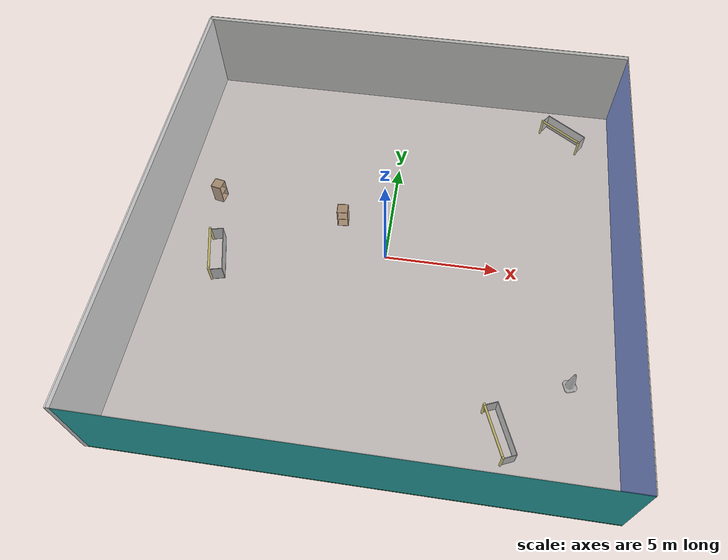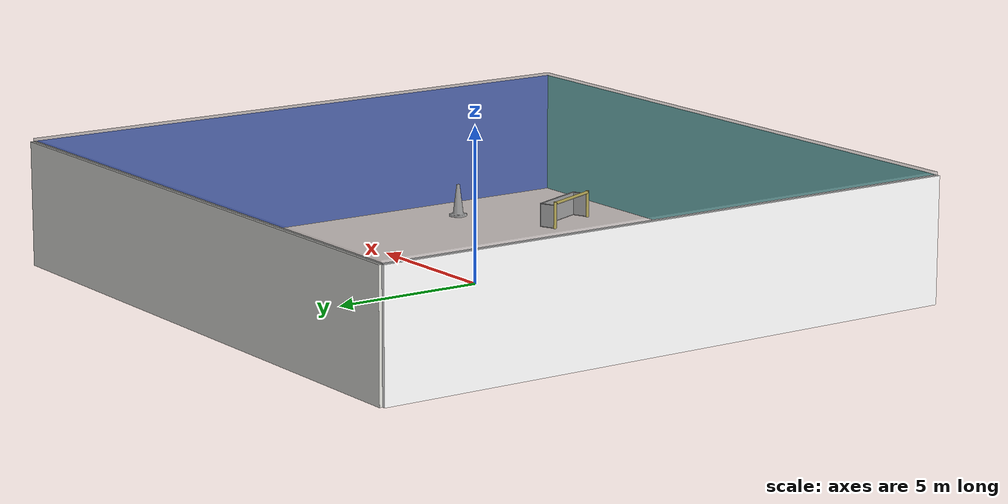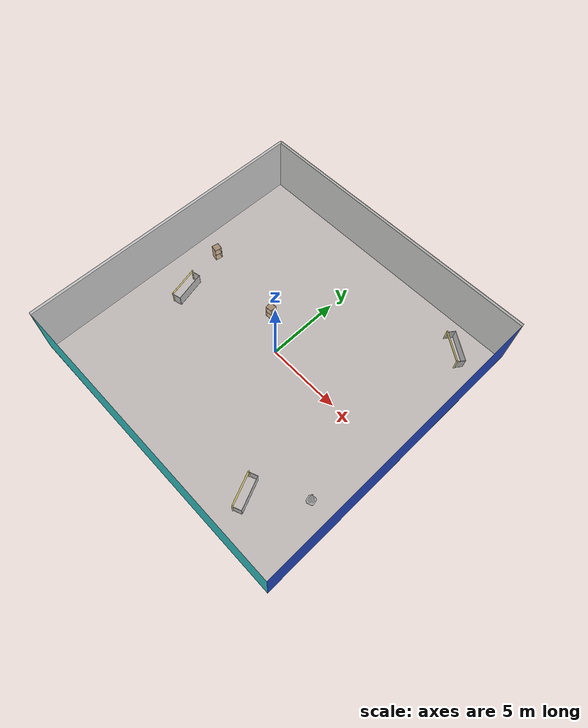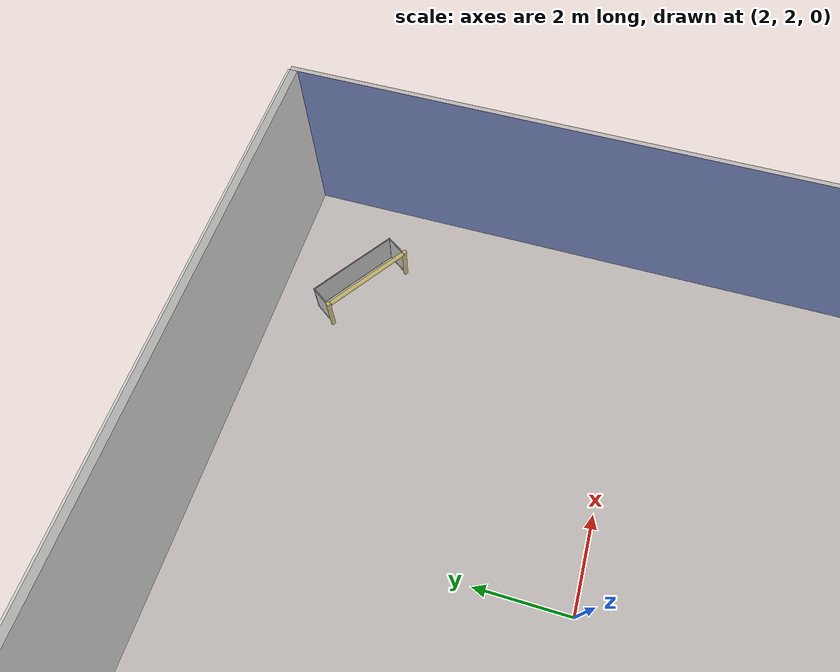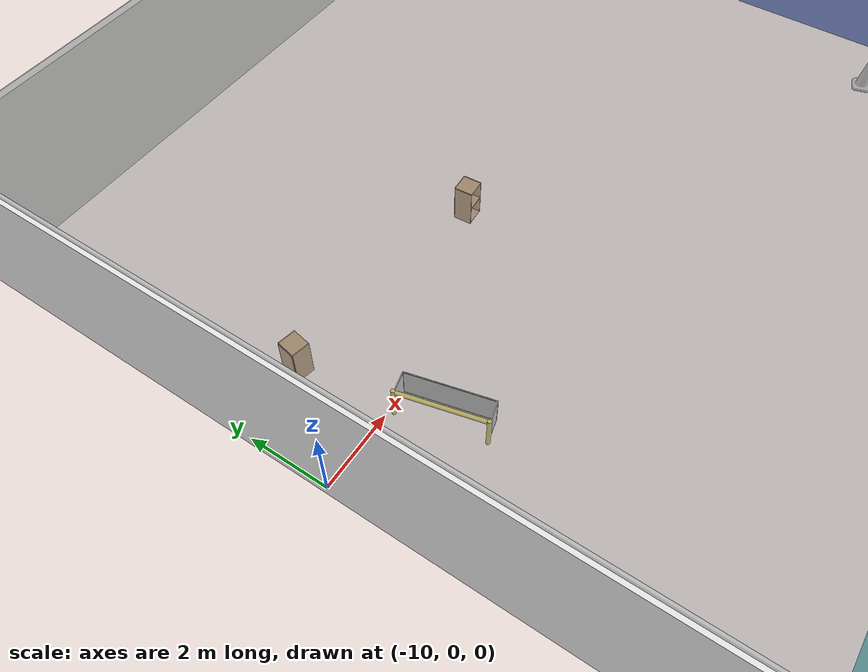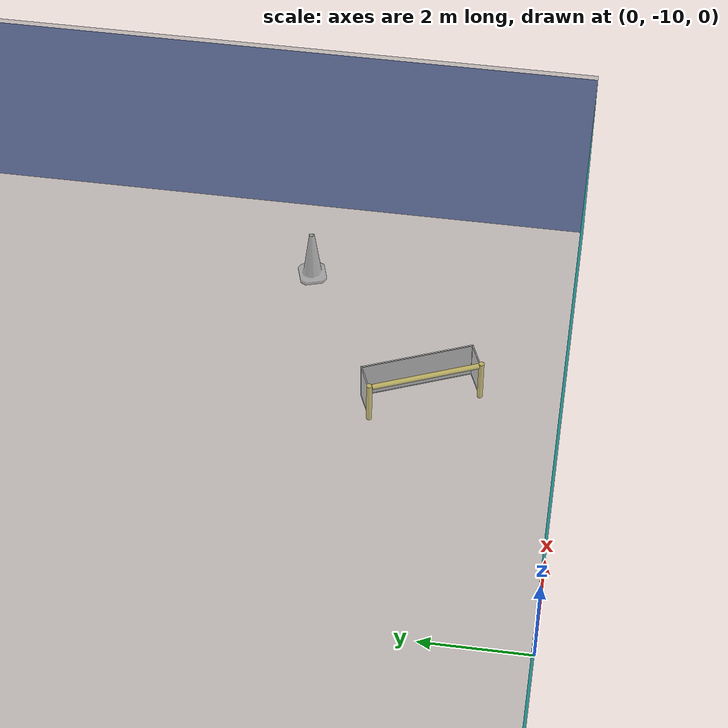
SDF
<sdf version="1.4">
 <world name="default">
  <physics type="ode">
   <max_step_size>0.001</max_step_size>
   <real_time_factor>1</real_time_factor>
   <real_time_update_rate>1000</real_time_update_rate>
   <gravity>0 0 -9.8</gravity>
  </physics>
  <scene><ambient>0.4 0.4 0.4 1</ambient><background>0.7 0.7 0.7 1</background><shadows>1</shadows></scene>
  <model name="Surrounding">
   <static>1</static>
   <link name="Ceiling">
    <collision name="Ceiling_Collision"><geometry><box><size>20 20 0.1</size></box></geometry></collision>
    <visual name="Ceiling_Visual">
     <geometry><box><size>20 20 0.1</size></box></geometry>
     <material>
      <script><uri>file://media/materials/scripts/gazebo.material</uri><name>Gazebo/GreyTransparent</name></script>
     </material>
    </visual>
    <pose>0 0 4.05 0 0 0</pose>
   </link>
   <link name="Wall_South">
    <collision name="Wall_South_Collision">
     <geometry><box><size>20 0 4</size></box></geometry>
     <pose>0 0 2 0 -0 0</pose>
    </collision>
    <visual name="Wall_South_Visual">
     <pose>0 0 2 0 -0 0</pose>
     <geometry><box><size>20 0 4</size></box></geometry>
     <material>
      <script>
       <uri>file://media/materials/scripts/gazebo.material</uri>
       <name>Gazebo/TurquoiseGlowOutline</name>
      </script>
     </material>
    </visual>
    <velocity_decay><linear>0</linear><angular>0</angular></velocity_decay>
    <pose>0 -10 0 0 -0 0</pose>
   </link>
   <link name="Wall_East">
    <collision name="Wall_21_Collision">
     <geometry><box><size>20 0 4</size></box></geometry>
     <pose>0 0 2 0 -0 0</pose>
    </collision>
    <visual name="Wall_21_Visual">
     <pose>0 0 2 0 -0 0</pose>
     <geometry><box><size>20 0 4</size></box></geometry>
     <material>
      <script><uri>file://media/materials/scripts/gazebo.material</uri><name>Gazebo/BlueGlow</name></script>
     </material>
    </visual>
    <velocity_decay><linear>0</linear><angular>0</angular></velocity_decay>
    <pose>10 0 0 0 -0 1.5708</pose>
   </link>
   <link name="Wall_North">
    <collision name="Wall_22_Collision">
     <geometry><box><size>20 0.2 4</size></box></geometry>
     <pose>0 0 2 0 -0 0</pose>
    </collision>
    <visual name="Wall_22_Visual">
     <pose>0 0 2 0 -0 0</pose>
     <geometry><box><size>20 0.2 4</size></box></geometry>
     <material>
      <script><uri>file://media/materials/scripts/gazebo.material</uri><name>Gazebo/CeilingTiled</name></script>
     </material>
    </visual>
    <velocity_decay><linear>0</linear><angular>0</angular></velocity_decay>
    <pose>0 10 0 0 -0 0</pose>
   </link>
   <link name="Wall_West">
    <collision name="Wall_23_Collision">
     <geometry><box><size>20 0.2 4</size></box></geometry>
     <pose>0 0 2 0 -0 0</pose>
    </collision>
    <visual name="Wall_23_Visual">
     <pose>0 0 2 0 -0 0</pose>
     <geometry><box><size>20 0.2 4</size></box></geometry>
     <material>
      <script><uri>file://media/materials/scripts/gazebo.material</uri><name>Gazebo/White</name></script>
     </material>
    </visual>
    <velocity_decay><linear>0</linear><angular>0</angular></velocity_decay>
    <pose>-10 0 0 0 0 -1.5708</pose>
   </link>
   <link name="Ground_link">
    <collision name="collision">
     <pose>0 0 .05 0 -0 0</pose>
     <geometry><box><size>20 20 0.1</size></box></geometry>
    </collision>
    <visual name="visual">
     <pose>0 0 .05 0 -0 0</pose>
     <geometry><box><size>20 20 0.1</size></box></geometry>
     <material>
      <script><uri>file://media/materials/scripts/gazebo.material</uri><name>Gazebo/GreenTransparent</name></script>
     </material>
    </visual>
   </link>
   <static>1</static>
  </model>
  <spherical_coordinates>
   <surface_model>EARTH_WGS84</surface_model>
   <latitude_deg>0</latitude_deg>
   <longitude_deg>0</longitude_deg>
   <elevation>0</elevation>
   <heading_deg>0</heading_deg>
  </spherical_coordinates>
  <light name="lightball_0" type="diffuse">
   <diffuse>0.8 0.8 0.8 1</diffuse>
   <specular>0.2 0.2 0.2 1</specular>
   <attenuation>
    <range>100</range>
    <constant>0.7</constant>
    <linear>0.01</linear>
    <quadratic>0.001</quadratic>
   </attenuation>
   <direction>-0.5 0.1 -0.9</direction>
   <pose>-5.76912618774 -1.54958511998 3.21103902008 0 0 0</pose>
  </light>
  <light name="lightball_1" type="diffuse">
   <diffuse>0.8 0.8 0.8 1</diffuse>
   <specular>0.2 0.2 0.2 1</specular>
   <attenuation>
    <range>100</range>
    <constant>0.7</constant>
    <linear>0.01</linear>
    <quadratic>0.001</quadratic>
   </attenuation>
   <direction>-0.5 0.1 -0.9</direction>
   <pose>-7.06421697385 -0.800422608162 2.62851697984 0 0 0</pose>
  </light>
  <light name="lightball_2" type="diffuse">
   <diffuse>0.8 0.8 0.8 1</diffuse>
   <specular>0.2 0.2 0.2 1</specular>
   <attenuation>
    <range>100</range>
    <constant>0.7</constant>
    <linear>0.01</linear>
    <quadratic>0.001</quadratic>
   </attenuation>
   <direction>-0.5 0.1 -0.9</direction>
   <pose>7.20951084952 -2.27855399127 1.6640271818 0 0 0</pose>
  </light>
  <light name="lightball_3" type="diffuse">
   <diffuse>0.8 0.8 0.8 1</diffuse>
   <specular>0.2 0.2 0.2 1</specular>
   <attenuation>
    <range>100</range>
    <constant>0.7</constant>
    <linear>0.01</linear>
    <quadratic>0.001</quadratic>
   </attenuation>
   <direction>-0.5 0.1 -0.9</direction>
   <pose>8.48105808628 -3.26689798114 3.29599229718 0 0 0</pose>
  </light>
  <light name="lightball_4" type="diffuse">
   <diffuse>0.8 0.8 0.8 1</diffuse>
   <specular>0.2 0.2 0.2 1</specular>
   <attenuation>
    <range>100</range>
    <constant>0.7</constant>
    <linear>0.01</linear>
    <quadratic>0.001</quadratic>
   </attenuation>
   <direction>-0.5 0.1 -0.9</direction>
   <pose>0.77369030277 -7.93688731174 3.62248013261 0 0 0</pose>
  </light>
  <light name="lightball_5" type="diffuse">
   <diffuse>0.8 0.8 0.8 1</diffuse>
   <specular>0.2 0.2 0.2 1</specular>
   <attenuation>
    <range>100</range>
    <constant>0.7</constant>
    <linear>0.01</linear>
    <quadratic>0.001</quadratic>
   </attenuation>
   <direction>-0.5 0.1 -0.9</direction>
   <pose>-6.06354263781 9.77044363753 3.50717628186 0 0 0</pose>
  </light>
  <light name="lightball_6" type="diffuse">
   <diffuse>0.8 0.8 0.8 1</diffuse>
   <specular>0.2 0.2 0.2 1</specular>
   <attenuation>
    <range>100</range>
    <constant>0.7</constant>
    <linear>0.01</linear>
    <quadratic>0.001</quadratic>
   </attenuation>
   <direction>-0.5 0.1 -0.9</direction>
   <pose>7.90010061594 0.273581132135 1.48442114572 0 0 0</pose>
  </light>
  <light name="lightball_7" type="diffuse">
   <diffuse>0.8 0.8 0.8 1</diffuse>
   <specular>0.2 0.2 0.2 1</specular>
   <attenuation>
    <range>100</range>
    <constant>0.7</constant>
    <linear>0.01</linear>
    <quadratic>0.001</quadratic>
   </attenuation>
   <direction>-0.5 0.1 -0.9</direction>
   <pose>4.16747210765 -8.58220058925 3.515311776 0 0 0</pose>
  </light>
  <light name="lightball_8" type="diffuse">
   <diffuse>0.8 0.8 0.8 1</diffuse>
   <specular>0.2 0.2 0.2 1</specular>
   <attenuation>
    <range>100</range>
    <constant>0.7</constant>
    <linear>0.01</linear>
    <quadratic>0.001</quadratic>
   </attenuation>
   <direction>-0.5 0.1 -0.9</direction>
   <pose>1.53184961151 -3.4851820404 3.20573455821 0 0 0</pose>
  </light>
  <light name="lightball_9" type="diffuse">
   <diffuse>0.8 0.8 0.8 1</diffuse>
   <specular>0.2 0.2 0.2 1</specular>
   <attenuation>
    <range>100</range>
    <constant>0.7</constant>
    <linear>0.01</linear>
    <quadratic>0.001</quadratic>
   </attenuation>
   <direction>-0.5 0.1 -0.9</direction>
   <pose>-7.44673213941 -8.37434215051 1.16391263856 0 0 0</pose>
  </light>
  <light name="lightball_10" type="diffuse">
   <diffuse>0.8 0.8 0.8 1</diffuse>
   <specular>0.2 0.2 0.2 1</specular>
   <attenuation>
    <range>100</range>
    <constant>0.7</constant>
    <linear>0.01</linear>
    <quadratic>0.001</quadratic>
   </attenuation>
   <direction>-0.5 0.1 -0.9</direction>
   <pose>8.89013731996 5.28098103665 2.62952989903 0 0 0</pose>
  </light>
  <light name="lightball_11" type="diffuse">
   <diffuse>0.8 0.8 0.8 1</diffuse>
   <specular>0.2 0.2 0.2 1</specular>
   <attenuation>
    <range>100</range>
    <constant>0.7</constant>
    <linear>0.01</linear>
    <quadratic>0.001</quadratic>
   </attenuation>
   <direction>-0.5 0.1 -0.9</direction>
   <pose>-9.89576700522 1.01826929331 2.29909077807 0 0 0</pose>
  </light>
  <include>
   <uri>model://robocup_3Dsim_goal</uri>
   <pose>-7.57420776278 -1.14165092714 0 0 0 0.242053883844</pose>
  </include>
  <include><uri>model://cabinet</uri><pose>-8.10048617712 2.25974713636 0 0 0 2.9495096791</pose></include>
  <include><uri>model://cabinet</uri><pose>-2.16561724115 1.67284701085 0 0 0 1.63931412083</pose></include>
  <include>
   <uri>model://robocup_3Dsim_goal</uri>
   <pose>5.15913598195 -7.49241177554 0 0 0 0.394712249997</pose>
  </include>
  <include>
   <uri>model://construction_cone</uri>
   <pose>8.14150771786 -4.95283066584 0 0 0 1.87103774273</pose>
  </include>
  <include>
   <uri>model://robocup_3Dsim_goal</uri>
   <pose>7.52547676508 7.88743614697 0 0 0 0.966631323701</pose>
  </include>
 </world>
</sdf>

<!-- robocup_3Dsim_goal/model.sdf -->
<sdf version="1.5">
  <model name="robocup_3d_goal">
    <static>true</static>
    <link name="left_post">
      <pose>0 1.05 0.45 0 0 0</pose>
      <collision name="collision">
        <geometry>
          <cylinder>
            <radius>0.05</radius>
            <length>0.9</length>
          </cylinder>
        </geometry>
      </collision>
      <visual name="visual">
        <geometry>
          <cylinder>
            <radius>0.05</radius>
            <length>0.9</length>
          </cylinder>
        </geometry>
        <material>
          <script>
            <uri>file://media/materials/scripts/gazebo.material</uri>
            <name>Gazebo/ZincYellow</name>
          </script>
        </material>
      </visual>
    </link>
    <link name="left_support_horiz_lower">
      <pose>0.30 1.05 0.01 0 0 0</pose>
      <collision name="collision">
        <geometry>
          <box>
            <size>0.50 0.02 0.02</size>
          </box>
        </geometry>
      </collision>
      <visual name="visual">
        <geometry>
          <box>
            <size>0.50 0.02 0.02</size>
          </box>
        </geometry>
        <material>
          <script>
            <uri>file://media/materials/scripts/gazebo.material</uri>
            <name>Gazebo/White</name>
          </script>
        </material>
      </visual>
    </link>
    <link name="left_support_horiz_upper">
      <pose>0.30 1.05 0.79 0 0 0</pose>
      <collision name="collision">
        <geometry>
          <box>
            <size>0.50 0.02 0.02</size>
          </box>
        </geometry>
      </collision>
      <visual name="visual">
        <geometry>
          <box>
            <size>0.50 0.02 0.02</size>
          </box>
        </geometry>
        <material>
          <script>
            <uri>file://media/materials/scripts/gazebo.material</uri>
            <name>Gazebo/White</name>
          </script>
        </material>
      </visual>
    </link>
    <link name="left_support_vertical">
      <pose>0.56 1.05 0.4 0 1.5708 0</pose>
      <collision name="collision">
        <geometry>
          <box>
            <size>0.80 0.02 0.02</size>
          </box>
        </geometry>
      </collision>
      <visual name="visual">
        <geometry>
          <box>
            <size>0.80 0.02 0.02</size>
          </box>
        </geometry>
        <material>
          <script>
            <uri>file://media/materials/scripts/gazebo.material</uri>
            <name>Gazebo/White</name>
          </script>
        </material>
      </visual>
    </link>
    <link name="right_support_horiz_lower">
      <pose>0.30 -1.05 0.01 0 0 0</pose>
      <collision name="collision">
        <geometry>
          <box>
            <size>0.50 0.02 0.02</size>
          </box>
        </geometry>
      </collision>
      <visual name="visual">
        <geometry>
          <box>
            <size>0.50 0.02 0.02</size>
          </box>
        </geometry>
        <material>
          <script>
            <uri>file://media/materials/scripts/gazebo.material</uri>
            <name>Gazebo/White</name>
          </script>
        </material>
      </visual>
    </link>
    <link name="right_support_horiz_upper">
      <pose>0.30 -1.05 0.79 0 0 0</pose>
      <collision name="collision">
        <geometry>
          <box>
            <size>0.50 0.02 0.02</size>
          </box>
        </geometry>
      </collision>
      <visual name="visual">
        <geometry>
          <box>
            <size>0.50 0.02 0.02</size>
          </box>
        </geometry>
        <material>
          <script>
            <uri>file://media/materials/scripts/gazebo.material</uri>
            <name>Gazebo/White</name>
          </script>
        </material>
      </visual>
    </link>
    <link name="right_support_vertical">
      <pose>0.56 -1.05 0.4 0 1.5708 0</pose>
      <collision name="collision">
        <geometry>
          <box>
            <size>0.80 0.02 0.02</size>
          </box>
        </geometry>
      </collision>
      <visual name="visual">
        <geometry>
          <box>
            <size>0.80 0.02 0.02</size>
          </box>
        </geometry>
        <material>
          <script>
            <uri>file://media/materials/scripts/gazebo.material</uri>
            <name>Gazebo/White</name>
          </script>
        </material>
      </visual>
    </link>
    <link name="center_support_horiz_lower">
      <pose>0.56 0 0.01 0 1.5708 0</pose>
      <collision name="collision">
        <geometry>
          <box>
            <size>0.02 2.08 0.02</size>
          </box>
        </geometry>
      </collision>
      <visual name="visual">
        <geometry>
          <box>
            <size>0.02 2.08 0.02</size>
          </box>
        </geometry>
        <material>
          <script>
            <uri>file://media/materials/scripts/gazebo.material</uri>
            <name>Gazebo/White</name>
          </script>
        </material>
      </visual>
    </link>
    <link name="center_support_horiz_upper">
      <pose>0.56 0 0.79 0 1.5708 0</pose>
      <collision name="collision">
        <geometry>
          <box>
            <size>0.02 2.08 0.02</size>
          </box>
        </geometry>
      </collision>
      <visual name="visual">
        <geometry>
          <box>
            <size>0.02 2.08 0.02</size>
          </box>
        </geometry>
        <material>
          <script>
            <uri>file://media/materials/scripts/gazebo.material</uri>
            <name>Gazebo/White</name>
          </script>
        </material>
      </visual>
    </link>
    <link name="right_post">
      <pose>0 -1.05 0.45 0 0 0</pose>
      <collision name="collision">
        <geometry>
          <cylinder>
            <radius>0.05</radius>
            <length>0.9</length>
          </cylinder>
        </geometry>
      </collision>
      <visual name="visual">
        <geometry>
          <cylinder>
            <radius>0.05</radius>
            <length>0.9</length>
          </cylinder>
        </geometry>
        <material>
          <script>
            <uri>file://media/materials/scripts/gazebo.material</uri>
            <name>Gazebo/ZincYellow</name>
          </script>
        </material>
      </visual>
    </link>
    <link name="crossbar">
      <pose>0 0 0.85 1.57 1.57 0</pose>
      <collision name="collision">
        <geometry>
          <cylinder>
            <radius>0.05</radius>
            <length>2.0</length>
          </cylinder>
        </geometry>
      </collision>
      <visual name="visual">
        <geometry>
          <cylinder>
            <radius>0.05</radius>
            <length>2.0</length>
          </cylinder>
        </geometry>
        <material>
          <script>
            <uri>file://media/materials/scripts/gazebo.material</uri>
            <name>Gazebo/ZincYellow</name>
          </script>
        </material>
      </visual>
    </link>
    <link name="center_net">
      <pose>0.56 0 0.40 0 0 0</pose>
      <collision name="collision">
        <geometry>
          <box>
            <size>0.01 2.1 0.80</size>
          </box>
        </geometry>
      </collision>
      <visual name="visual">
        <geometry>
          <box>
            <size>0.01 2.1 0.80</size>
          </box>
        </geometry>
        <material>
          <script>
            <uri>model://../model_source/models/robocup09_spl_field/materials/scripts/</uri>
            <uri>model://../model_source/models/robocup09_spl_field/materials/textures/</uri>
            <name>RoboCup/Net</name>
          </script>
        </material>
      </visual>
    </link>
    <link name="left_net">
      <pose>0.30 1.05 0.40 0 0 0</pose>
      <collision name="collision">
        <geometry>
          <box>
            <size>0.50 0.01 0.76</size>
          </box>
        </geometry>
      </collision>
      <visual name="visual">
        <geometry>
          <box>
            <size>0.50 0.01 0.76</size>
          </box>
        </geometry>
        <material>
          <script>
            <uri>model://../model_source/models/robocup09_spl_field/materials/scripts/</uri>
            <uri>model://../model_source/models/robocup09_spl_field/materials/textures/</uri>
            <name>RoboCup/Net</name>
          </script>
        </material>
      </visual>
    </link>
    <link name="right_net">
      <pose>0.30 -1.05 0.40 0 0 0</pose>
      <collision name="collision">
        <geometry>
          <box>
            <size>0.50 0.01 0.76</size>
          </box>
        </geometry>
      </collision>
      <visual name="visual">
        <geometry>
          <box>
            <size>0.50 0.01 0.76</size>
          </box>
        </geometry>
        <material>
          <script>
            <uri>model://../model_source/models/robocup09_spl_field/materials/scripts/</uri>
            <uri>model://../model_source/models/robocup09_spl_field/materials/textures/</uri>
            <name>RoboCup/Net</name>
          </script>
        </material>
      </visual>
    </link>
  </model>
</sdf>

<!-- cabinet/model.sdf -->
<sdf version="1.5">
  <model name="cabinet">
    <static>true</static>
    <link name="cabinet_bottom_plate">
      <inertial>
        <pose>0 0 -1 0 0 0</pose>
        <inertia>
          <ixx>2.050000</ixx>
          <ixy>0</ixy>
          <ixz>0</ixz>
          <iyy>2.050000</iyy>
          <iyz>0</iyz>
          <izz>2.050000</izz>
        </inertia>
        <mass>25.000000</mass>
      </inertial>
      <collision name="cabinet_bottom_plate_geom">
        <pose>0 0 0.010000 0 0 0</pose>
        <geometry>
          <box>
            <size>0.450000 0.450000 0.020000</size>
          </box>
        </geometry>
      </collision>
      <visual name="cabinet_bottom_plate_geom_visual">
        <pose>0 0 0.010000 0 0 0</pose>
        <geometry>
          <box>
            <size>0.450000 0.450000 0.020000</size>
          </box>
        </geometry>
        <material>
          <script>
            <uri>model://media/materials/scripts/gazebo.material</uri>
            <name>Gazebo/Wood</name>
          </script>
        </material>
      </visual>
      <collision name="cabinet_bottom_plate_geom_cabinet_back_plate">
        <pose>0.235000 0 0.510000 0 0 0</pose>
        <geometry>
          <box>
            <size>0.020000 0.450000 1.020000</size>
          </box>
        </geometry>
      </collision>
      <visual name="cabinet_bottom_plate_geom_cabinet_back_plate_visual">
        <pose>0.235000 0 0.510000 0 0 0</pose>
        <geometry>
          <box>
            <size>0.020000 0.450000 1.020000</size>
          </box>
        </geometry>
        <material>
          <script>
            <uri>model://media/materials/scripts/gazebo.material</uri>
            <name>Gazebo/Wood</name>
          </script>
        </material>
      </visual>
      <collision name="cabinet_bottom_plate_geom_cabinet_left_plate">
        <pose>0 0.235000 0.510000 0 0 0</pose>
        <geometry>
          <box>
            <size>0.450000 0.020000 1.020000</size>
          </box>
        </geometry>
      </collision>
      <visual name="cabinet_bottom_plate_geom_cabinet_left_plate_visual">
        <pose>0 0.235000 0.510000 0 0 0</pose>
        <geometry>
          <box>
            <size>0.450000 0.020000 1.020000</size>
          </box>
        </geometry>
        <material>
          <script>
            <uri>model://media/materials/scripts/gazebo.material</uri>
            <name>Gazebo/Wood</name>
          </script>
        </material>
      </visual>
      <collision name="cabinet_bottom_plate_geom_cabinet_middle_plate">
        <pose>0 0 0.510000 0 0 0</pose>
        <geometry>
          <box>
            <size>0.450000 0.450000 0.020000</size>
          </box>
        </geometry>
      </collision>
      <visual name="cabinet_bottom_plate_geom_cabinet_middle_plate_visual">
        <pose>0 0 0.510000 0 0 0</pose>
        <geometry>
          <box>
            <size>0.450000 0.450000 0.020000</size>
          </box>
        </geometry>
        <material>
          <script>
            <uri>model://media/materials/scripts/gazebo.material</uri>
            <name>Gazebo/Wood</name>
          </script>
        </material>
      </visual>
      <collision name="cabinet_bottom_plate_geom_cabinet_right_plate">
        <pose>0 -0.235000 0.510000 0 0 0</pose>
        <geometry>
          <box>
            <size>0.450000 0.020000 1.020000</size>
          </box>
        </geometry>
      </collision>
      <visual name="cabinet_bottom_plate_geom_cabinet_right_plate_visual">
        <pose>0 -0.235000 0.510000 0 0 0</pose>
        <geometry>
          <box>
            <size>0.450000 0.020000 1.020000</size>
          </box>
        </geometry>
        <material>
          <script>
            <uri>model://media/materials/scripts/gazebo.material</uri>
            <name>Gazebo/Wood</name>
          </script>
        </material>
      </visual>
      <collision name="cabinet_bottom_plate_geom_cabinet_top_plate">
        <pose>0 0 1.010000 0 0 0</pose>
        <geometry>
          <box>
            <size>0.450000 0.450000 0.020000</size>
          </box>
        </geometry>
      </collision>
      <visual name="cabinet_bottom_plate_geom_cabinet_top_plate_visual">
        <pose>0 0 1.010000 0 0 0</pose>
        <geometry>
          <box>
            <size>0.450000 0.450000 0.020000</size>
          </box>
        </geometry>
        <material>
          <script>
            <uri>model://media/materials/scripts/gazebo.material</uri>
            <name>Gazebo/Wood</name>
          </script>
        </material>
      </visual>
    </link>
  </model>
</sdf>

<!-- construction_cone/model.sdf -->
<sdf version="1.5">
  <model name="Construction Cone">
    <link name="link">
      <collision name="collision">
        <geometry>
          <mesh>
            <scale>10 10 10</scale>
            <uri>file://isr-testbed/construction_cone/meshes/construction_cone.dae</uri>
          </mesh>
        </geometry>
      </collision>
      <visual name="visual">
        <geometry>
          <mesh>
            <scale>10 10 10</scale>
            <uri>file://isr-testbed/construction_cone/meshes/construction_cone.dae</uri>
          </mesh>
        </geometry>
      </visual>
    </link>
  </model>
</sdf>
